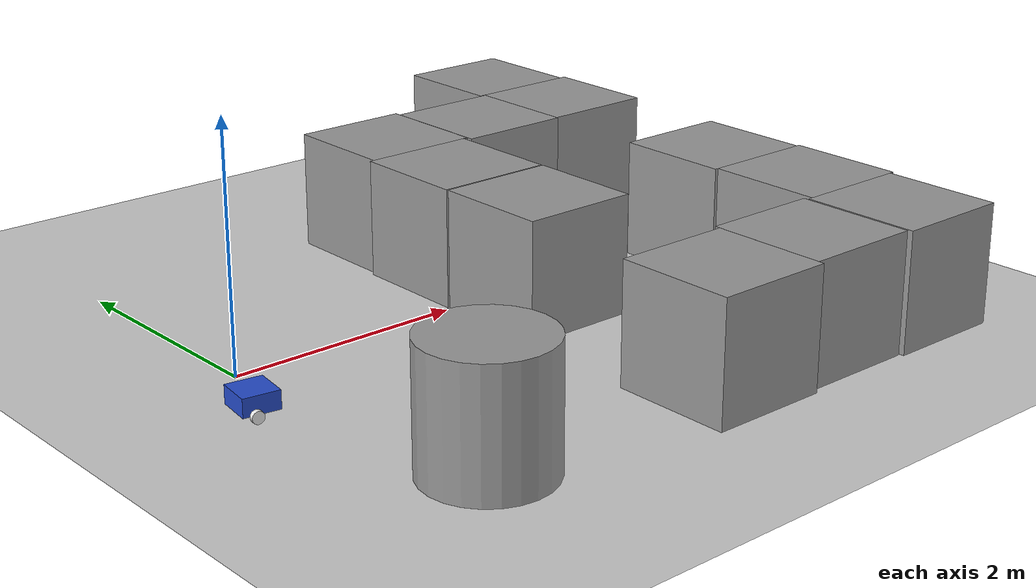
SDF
<sdf version="1.7">
 <world name="default">
  <light name="sun" type="directional">
   <pose>0 0 10 0 -0 0</pose>
   <diffuse>0.8 0.8 0.8 1</diffuse>
   <specular>0.2 0.2 0.2 1</specular>
   <attenuation>
    <range>1000</range>
    <constant>0.9</constant>
    <linear>0.01</linear>
    <quadratic>0.001</quadratic>
   </attenuation>
   <direction>-0.5 0.1 -0.9</direction>
   <spot><inner_angle>0</inner_angle><outer_angle>0</outer_angle><falloff>0</falloff></spot>
  </light>
  <model name="ground_plane">
   <static>1</static>
   <link name="link">
    <collision name="collision">
     <geometry><plane><normal>0 0 1</normal><size>100 100</size></plane></geometry>
     <surface>
      <contact><collide_bitmask>65535</collide_bitmask></contact>
      <friction><ode><mu>100</mu><mu2>50</mu2></ode></friction>
     </surface>
    </collision>
    <visual name="visual">
     <cast_shadows>0</cast_shadows>
     <geometry><plane><normal>0 0 1</normal><size>100 100</size></plane></geometry>
     <material>
      <script><uri>file://media/materials/scripts/gazebo.material</uri><name>Gazebo/Grey</name></script>
     </material>
    </visual>
   </link>
  </model>
  <gravity>0 0 -9.8</gravity>
  <magnetic_field>6e-06 2.3e-05 -4.2e-05</magnetic_field>
  <atmosphere type="adiabatic"/>
  <physics type="ode">
   <max_step_size>0.001</max_step_size>
   <real_time_factor>1</real_time_factor>
   <real_time_update_rate>1000</real_time_update_rate>
  </physics>
  <scene><ambient>0.4 0.4 0.4 1</ambient><background>0.7 0.7 0.7 1</background><shadows>1</shadows></scene>
  <audio><device>default</device></audio>
  <spherical_coordinates>
   <surface_model>EARTH_WGS84</surface_model>
   <latitude_deg>0</latitude_deg>
   <longitude_deg>0</longitude_deg>
   <elevation>0</elevation>
   <heading_deg>0</heading_deg>
  </spherical_coordinates>
  <model name="robot_first">
   <link name="base_link">
    <inertial>
     <pose>0.065 0 0.0625 0 -0 0</pose>
     <mass>0.6</mass>
     <inertia>
      <ixx>0.00525625</ixx>
      <ixy>0</ixy>
      <ixz>0.0005625</ixz>
      <iyy>0.00593125</iyy>
      <iyz>0</iyz>
      <izz>0.008275</izz>
     </inertia>
    </inertial>
    <collision name="base_link_fixed_joint_lump__chassis_collision">
     <pose>0.05 0 0.075 0 -0 0</pose>
     <geometry><box><size>0.3 0.3 0.15</size></box></geometry>
    </collision>
    <collision name="base_link_fixed_joint_lump__caster_wheel_collision_1">
     <pose>0.14 0 0 0 -0 0</pose>
     <geometry><sphere><radius>0.05</radius></sphere></geometry>
     <surface><friction><ode><mu>0.001</mu><mu2>0.001</mu2></ode></friction></surface>
    </collision>
    <visual name="base_link_fixed_joint_lump__chassis_visual">
     <pose>0.05 0 0.075 0 -0 0</pose>
     <geometry><box><size>0.3 0.3 0.15</size></box></geometry>
     <material>
      <script><name>Gazebo/Blue</name><uri>file://media/materials/scripts/gazebo.material</uri></script>
     </material>
    </visual>
    <visual name="base_link_fixed_joint_lump__caster_wheel_visual_1">
     <pose>0.14 0 0 0 -0 0</pose>
     <geometry><sphere><radius>0.05</radius></sphere></geometry>
     <material>
      <script><name>Gazebo/White</name><uri>file://media/materials/scripts/gazebo.material</uri></script>
     </material>
    </visual>
   </link>
   <joint name="left_wheel_joint" type="revolute">
    <pose relative_to="base_link">0 0.175 0 -1.5708 0 0</pose>
    <parent>base_link</parent>
    <child>left_wheel</child>
    <axis>
     <xyz>0 0 1</xyz>
     <limit><lower>-1e+16</lower><upper>1e+16</upper></limit>
     <dynamics><spring_reference>0</spring_reference><spring_stiffness>0</spring_stiffness></dynamics>
    </axis>
   </joint>
   <link name="left_wheel">
    <pose relative_to="left_wheel_joint">0 0 0 0 -0 0</pose>
    <inertial>
     <mass>0.1</mass>
     <inertia>
      <ixx>7.58333e-05</ixx>
      <ixy>0</ixy>
      <ixz>0</ixz>
      <iyy>7.58333e-05</iyy>
      <iyz>0</iyz>
      <izz>0.000125</izz>
     </inertia>
    </inertial>
    <collision name="left_wheel_collision">
     <geometry><cylinder><length>0.04</length><radius>0.05</radius></cylinder></geometry>
    </collision>
    <visual name="left_wheel_visual">
     <geometry><cylinder><length>0.04</length><radius>0.05</radius></cylinder></geometry>
     <material>
      <script><name>Gazebo/White</name><uri>file://media/materials/scripts/gazebo.material</uri></script>
     </material>
    </visual>
   </link>
   <joint name="right_wheel_joint" type="revolute">
    <pose relative_to="base_link">0 -0.175 0 1.5708 -0 0</pose>
    <parent>base_link</parent>
    <child>right_wheel</child>
    <axis>
     <xyz>0 0 -1</xyz>
     <limit><lower>-1e+16</lower><upper>1e+16</upper></limit>
     <dynamics><spring_reference>0</spring_reference><spring_stiffness>0</spring_stiffness></dynamics>
    </axis>
   </joint>
   <link name="right_wheel">
    <pose relative_to="right_wheel_joint">0 0 0 0 -0 0</pose>
    <inertial>
     <mass>0.1</mass>
     <inertia>
      <ixx>7.58333e-05</ixx>
      <ixy>0</ixy>
      <ixz>0</ixz>
      <iyy>7.58333e-05</iyy>
      <iyz>0</iyz>
      <izz>0.000125</izz>
     </inertia>
    </inertial>
    <collision name="right_wheel_collision">
     <geometry><cylinder><length>0.04</length><radius>0.05</radius></cylinder></geometry>
    </collision>
    <visual name="right_wheel_visual">
     <geometry><cylinder><length>0.04</length><radius>0.05</radius></cylinder></geometry>
     <material>
      <script><name>Gazebo/White</name><uri>file://media/materials/scripts/gazebo.material</uri></script>
     </material>
    </visual>
   </link>
   <static>0</static>
   <plugin name="diff_drive" filename="libgazebo_ros_diff_drive.so">
    <left_joint>left_wheel_joint</left_joint>
    <right_joint>right_wheel_joint</right_joint>
    <wheel_separation>0.35</wheel_separation>
    <wheel_diameter>0.1</wheel_diameter>
    <max_wheel_torque>200</max_wheel_torque>
    <max_acceleration>10.0</max_acceleration>
    <odometry_frame>odom</odometry_frame>
    <robot_base_frame>base_link</robot_base_frame>
    <publish_odom>1</publish_odom>
    <publish_odom_tf>1</publish_odom_tf>
    <publish_wheel_tf>1</publish_wheel_tf>
   </plugin>
   <pose>-0.296456 -0.606654 0.05 0 3e-06 -0.143496</pose>
  </model>
  <light name="sun" type="directional">
   <pose>-18.8529 11.6407 10 0 -0 0</pose>
   <diffuse>0.8 0.8 0.8 1</diffuse>
   <specular>0.2 0.2 0.2 1</specular>
   <attenuation>
    <range>1000</range>
    <constant>0.9</constant>
    <linear>0.01</linear>
    <quadratic>0.001</quadratic>
   </attenuation>
   <direction>-0.5 0.1 -0.9</direction>
  </light>
  <model name="unit_cylinder">
   <pose>0.39095 -2.41785 0.499998 3e-06 -3e-06 0</pose>
   <link name="link">
    <inertial>
     <mass>1</mass>
     <inertia><ixx>0.145833</ixx><ixy>0</ixy><ixz>0</ixz><iyy>0.145833</iyy><iyz>0</iyz><izz>0.125</izz></inertia>
    </inertial>
    <collision name="collision">
     <geometry><cylinder><radius>0.5</radius><length>1</length></cylinder></geometry>
    </collision>
    <visual name="visual">
     <geometry><cylinder><radius>0.5</radius><length>1</length></cylinder></geometry>
     <material>
      <script><name>Gazebo/Grey</name><uri>file://media/materials/scripts/gazebo.material</uri></script>
     </material>
    </visual>
   </link>
  </model>
  <model name="unit_box">
   <pose>2.50156 -2.50113 0.499995 0 1e-05 0.000799</pose>
   <link name="link">
    <inertial>
     <mass>1</mass>
     <inertia>
      <ixx>0.166667</ixx>
      <ixy>0</ixy>
      <ixz>0</ixz>
      <iyy>0.166667</iyy>
      <iyz>0</iyz>
      <izz>0.166667</izz>
     </inertia>
    </inertial>
    <collision name="collision"><geometry><box><size>1 1 1</size></box></geometry></collision>
    <visual name="visual">
     <geometry><box><size>1 1 1</size></box></geometry>
     <material>
      <script><name>Gazebo/Grey</name><uri>file://media/materials/scripts/gazebo.material</uri></script>
     </material>
    </visual>
   </link>
  </model>
  <model name="unit_box_0">
   <pose>3.50152 -2.45348 0.5 0 -0 0.000799</pose>
   <link name="link">
    <inertial>
     <mass>1</mass>
     <inertia>
      <ixx>0.166667</ixx>
      <ixy>0</ixy>
      <ixz>0</ixz>
      <iyy>0.166667</iyy>
      <iyz>0</iyz>
      <izz>0.166667</izz>
     </inertia>
    </inertial>
    <collision name="collision"><geometry><box><size>1 1 1</size></box></geometry></collision>
    <visual name="visual">
     <geometry><box><size>1 1 1</size></box></geometry>
     <material>
      <script><name>Gazebo/Grey</name><uri>file://media/materials/scripts/gazebo.material</uri></script>
     </material>
    </visual>
   </link>
  </model>
  <model name="unit_box_1">
   <pose>4.52068 -2.48687 0.499995 0 -1e-05 1.2e-05</pose>
   <link name="link">
    <inertial>
     <mass>1</mass>
     <inertia>
      <ixx>0.166667</ixx>
      <ixy>0</ixy>
      <ixz>0</ixz>
      <iyy>0.166667</iyy>
      <iyz>0</iyz>
      <izz>0.166667</izz>
     </inertia>
    </inertial>
    <collision name="collision"><geometry><box><size>1 1 1</size></box></geometry></collision>
    <visual name="visual">
     <geometry><box><size>1 1 1</size></box></geometry>
     <material>
      <script><name>Gazebo/Grey</name><uri>file://media/materials/scripts/gazebo.material</uri></script>
     </material>
    </visual>
   </link>
  </model>
  <model name="unit_box_2">
   <pose>4.5594 -1.48681 0.499995 0 1e-05 1e-05</pose>
   <link name="link">
    <inertial>
     <mass>1</mass>
     <inertia>
      <ixx>0.166667</ixx>
      <ixy>0</ixy>
      <ixz>0</ixz>
      <iyy>0.166667</iyy>
      <iyz>0</iyz>
      <izz>0.166667</izz>
     </inertia>
    </inertial>
    <collision name="collision"><geometry><box><size>1 1 1</size></box></geometry></collision>
    <visual name="visual">
     <geometry><box><size>1 1 1</size></box></geometry>
     <material>
      <script><name>Gazebo/Grey</name><uri>file://media/materials/scripts/gazebo.material</uri></script>
     </material>
    </visual>
   </link>
  </model>
  <model name="unit_box_3">
   <pose>4.53075 -0.486797 0.499995 0 1e-05 4.3e-05</pose>
   <link name="link">
    <inertial>
     <mass>1</mass>
     <inertia>
      <ixx>0.166667</ixx>
      <ixy>0</ixy>
      <ixz>0</ixz>
      <iyy>0.166667</iyy>
      <iyz>0</iyz>
      <izz>0.166667</izz>
     </inertia>
    </inertial>
    <collision name="collision"><geometry><box><size>1 1 1</size></box></geometry></collision>
    <visual name="visual">
     <geometry><box><size>1 1 1</size></box></geometry>
     <material>
      <script><name>Gazebo/Grey</name><uri>file://media/materials/scripts/gazebo.material</uri></script>
     </material>
    </visual>
   </link>
  </model>
  <model name="unit_box_4">
   <pose>4.58293 1.49236 0.499995 0 -1e-05 0.000452</pose>
   <link name="link">
    <inertial>
     <mass>1</mass>
     <inertia>
      <ixx>0.166667</ixx>
      <ixy>0</ixy>
      <ixz>0</ixz>
      <iyy>0.166667</iyy>
      <iyz>0</iyz>
      <izz>0.166667</izz>
     </inertia>
    </inertial>
    <collision name="collision"><geometry><box><size>1 1 1</size></box></geometry></collision>
    <visual name="visual">
     <geometry><box><size>1 1 1</size></box></geometry>
     <material>
      <script><name>Gazebo/Grey</name><uri>file://media/materials/scripts/gazebo.material</uri></script>
     </material>
    </visual>
   </link>
  </model>
  <model name="unit_box_5">
   <pose>4.53379 2.49236 0.499995 0 -1e-05 0.000418</pose>
   <link name="link">
    <inertial>
     <mass>1</mass>
     <inertia>
      <ixx>0.166667</ixx>
      <ixy>0</ixy>
      <ixz>0</ixz>
      <iyy>0.166667</iyy>
      <iyz>0</iyz>
      <izz>0.166667</izz>
     </inertia>
    </inertial>
    <collision name="collision"><geometry><box><size>1 1 1</size></box></geometry></collision>
    <visual name="visual">
     <geometry><box><size>1 1 1</size></box></geometry>
     <material>
      <script><name>Gazebo/Grey</name><uri>file://media/materials/scripts/gazebo.material</uri></script>
     </material>
    </visual>
   </link>
  </model>
  <model name="unit_box_6">
   <pose>3.58286 1.47957 0.499995 1e-05 -0 0.00059</pose>
   <link name="link">
    <inertial>
     <mass>1</mass>
     <inertia>
      <ixx>0.166667</ixx>
      <ixy>0</ixy>
      <ixz>0</ixz>
      <iyy>0.166667</iyy>
      <iyz>0</iyz>
      <izz>0.166667</izz>
     </inertia>
    </inertial>
    <collision name="collision"><geometry><box><size>1 1 1</size></box></geometry></collision>
    <visual name="visual">
     <geometry><box><size>1 1 1</size></box></geometry>
     <material>
      <script><name>Gazebo/Grey</name><uri>file://media/materials/scripts/gazebo.material</uri></script>
     </material>
    </visual>
   </link>
  </model>
  <model name="unit_box_7">
   <pose>2.57962 1.53348 0.499995 0 1e-05 -0.00097</pose>
   <link name="link">
    <inertial>
     <mass>1</mass>
     <inertia>
      <ixx>0.166667</ixx>
      <ixy>0</ixy>
      <ixz>0</ixz>
      <iyy>0.166667</iyy>
      <iyz>0</iyz>
      <izz>0.166667</izz>
     </inertia>
    </inertial>
    <collision name="collision"><geometry><box><size>1 1 1</size></box></geometry></collision>
    <visual name="visual">
     <geometry><box><size>1 1 1</size></box></geometry>
     <material>
      <script><name>Gazebo/Grey</name><uri>file://media/materials/scripts/gazebo.material</uri></script>
     </material>
    </visual>
   </link>
  </model>
  <model name="unit_box_8">
   <pose>2.54189 0.533517 0.5 -0 -0 -0.00097</pose>
   <link name="link">
    <inertial>
     <mass>1</mass>
     <inertia>
      <ixx>0.166667</ixx>
      <ixy>0</ixy>
      <ixz>0</ixz>
      <iyy>0.166667</iyy>
      <iyz>0</iyz>
      <izz>0.166667</izz>
     </inertia>
    </inertial>
    <collision name="collision"><geometry><box><size>1 1 1</size></box></geometry></collision>
    <visual name="visual">
     <geometry><box><size>1 1 1</size></box></geometry>
     <material>
      <script><name>Gazebo/Grey</name><uri>file://media/materials/scripts/gazebo.material</uri></script>
     </material>
    </visual>
   </link>
  </model>
  <model name="unit_box_9">
   <pose>2.54616 -0.481538 0.5 0 -0 0</pose>
   <link name="link">
    <inertial>
     <mass>1</mass>
     <inertia>
      <ixx>0.166667</ixx>
      <ixy>0</ixy>
      <ixz>0</ixz>
      <iyy>0.166667</iyy>
      <iyz>0</iyz>
      <izz>0.166667</izz>
     </inertia>
    </inertial>
    <collision name="collision"><geometry><box><size>1 1 1</size></box></geometry></collision>
    <visual name="visual">
     <geometry><box><size>1 1 1</size></box></geometry>
     <material>
      <script><name>Gazebo/Grey</name><uri>file://media/materials/scripts/gazebo.material</uri></script>
     </material>
    </visual>
   </link>
  </model>
 </world>
</sdf>
